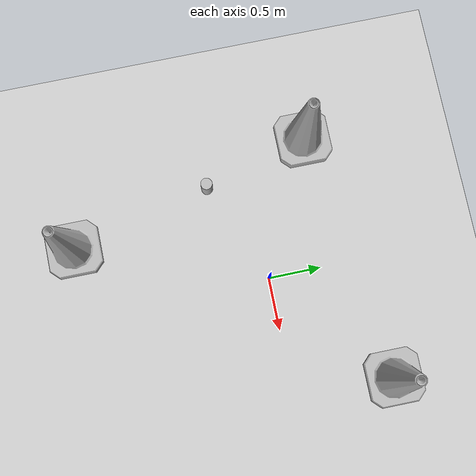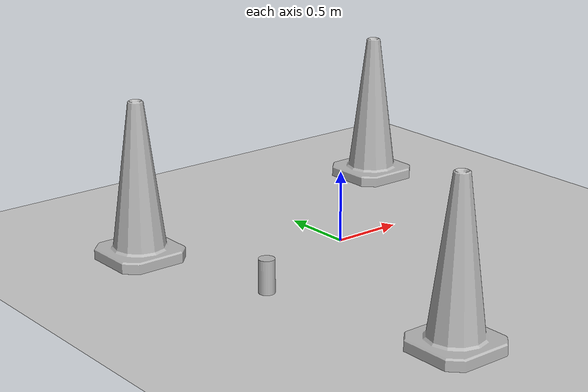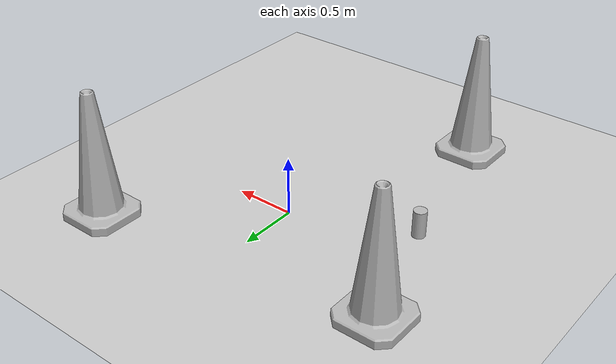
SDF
<sdf version="1.7">
 <world name="default">
  <light name="sun" type="directional">
   <pose>0 0 10 0 -0 0</pose>
   <diffuse>0.8 0.8 0.8 1</diffuse>
   <specular>0.2 0.2 0.2 1</specular>
   <attenuation>
    <range>1000</range>
    <constant>0.9</constant>
    <linear>0.01</linear>
    <quadratic>0.001</quadratic>
   </attenuation>
   <direction>-0.5 0.1 -0.9</direction>
   <spot><inner_angle>0</inner_angle><outer_angle>0</outer_angle><falloff>0</falloff></spot>
  </light>
  <model name="ground_plane">
   <static>1</static>
   <link name="link">
    <collision name="collision">
     <geometry><plane><normal>0 0 1</normal><size>100 100</size></plane></geometry>
     <surface>
      <contact><collide_bitmask>65535</collide_bitmask></contact>
      <friction><ode><mu>100</mu><mu2>50</mu2></ode></friction>
     </surface>
    </collision>
    <visual name="visual">
     <cast_shadows>0</cast_shadows>
     <geometry><plane><normal>0 0 1</normal><size>100 100</size></plane></geometry>
     <material>
      <script><uri>file://media/materials/scripts/gazebo.material</uri><name>Gazebo/Grey</name></script>
     </material>
    </visual>
   </link>
  </model>
  <gravity>0 0 -9.8</gravity>
  <magnetic_field>6e-06 2.3e-05 -4.2e-05</magnetic_field>
  <atmosphere type="adiabatic"/>
  <physics type="ode">
   <max_step_size>0.001</max_step_size>
   <real_time_factor>1</real_time_factor>
   <real_time_update_rate>1000</real_time_update_rate>
  </physics>
  <scene><ambient>0.4 0.4 0.4 1</ambient><background>0.7 0.7 0.7 1</background><shadows>1</shadows></scene>
  <audio><device>default</device></audio>
  <spherical_coordinates>
   <surface_model>EARTH_WGS84</surface_model>
   <latitude_deg>0</latitude_deg>
   <longitude_deg>0</longitude_deg>
   <elevation>0</elevation>
   <heading_deg>0</heading_deg>
  </spherical_coordinates>
  <model name="beer">
   <link name="link">
    <pose>0 0 0.115 0 -0 0</pose>
    <inertial>
     <mass>0.39</mass>
     <inertia><ixx>0.00058</ixx><ixy>0</ixy><ixz>0</ixz><iyy>0.00058</iyy><iyz>0</iyz><izz>0.00019</izz></inertia>
    </inertial>
    <collision name="collision">
     <geometry><cylinder><radius>0.055</radius><length>0.23</length></cylinder></geometry>
    </collision>
    <visual name="visual">
     <geometry><cylinder><radius>0.055</radius><length>0.23</length></cylinder></geometry>
     <material>
      <script>
       <uri>model://beer/materials/scripts</uri>
       <uri>model://beer/materials/textures</uri>
       <name>Beer/Diffuse</name>
      </script>
     </material>
    </visual>
   </link>
   <pose>-0.95805 -0.399208 -7e-06 0 0 -8e-06</pose>
  </model>
  <model name="Construction Cone">
   <link name="link">
    <collision name="collision">
     <geometry>
      <mesh><scale>10 10 10</scale><uri>model://construction_cone/meshes/construction_cone.dae</uri></mesh>
     </geometry>
    </collision>
    <visual name="visual">
     <geometry>
      <mesh><scale>10 10 10</scale><uri>model://construction_cone/meshes/construction_cone.dae</uri></mesh>
     </geometry>
    </visual>
    <inertial>
     <inertia><ixx>1</ixx><ixy>0</ixy><ixz>0</ixz><iyy>1</iyy><iyz>0</iyz><izz>1</izz></inertia>
     <mass>1</mass>
    </inertial>
   </link>
   <pose>-0.631176 -1.74483 -0 0 -1e-06 0</pose>
  </model>
  <model name="Construction Cone_0">
   <link name="link">
    <collision name="collision">
     <geometry>
      <mesh><scale>10 10 10</scale><uri>model://construction_cone/meshes/construction_cone.dae</uri></mesh>
     </geometry>
    </collision>
    <visual name="visual">
     <geometry>
      <mesh><scale>10 10 10</scale><uri>model://construction_cone/meshes/construction_cone.dae</uri></mesh>
     </geometry>
    </visual>
    <inertial>
     <inertia><ixx>1</ixx><ixy>0</ixy><ixz>0</ixz><iyy>1</iyy><iyz>0</iyz><izz>1</izz></inertia>
     <mass>1</mass>
    </inertial>
   </link>
   <pose>-1.25034 0.597964 -0 0 -0 0</pose>
  </model>
  <model name="Construction Cone_1">
   <link name="link">
    <collision name="collision">
     <geometry>
      <mesh><scale>10 10 10</scale><uri>model://construction_cone/meshes/construction_cone.dae</uri></mesh>
     </geometry>
    </collision>
    <visual name="visual">
     <geometry>
      <mesh><scale>10 10 10</scale><uri>model://construction_cone/meshes/construction_cone.dae</uri></mesh>
     </geometry>
    </visual>
    <inertial>
     <inertia><ixx>1</ixx><ixy>0</ixy><ixz>0</ixz><iyy>1</iyy><iyz>0</iyz><izz>1</izz></inertia>
     <mass>1</mass>
    </inertial>
   </link>
   <pose>1.13286 0.940794 -0 0 -0 0</pose>
  </model>
 </world>
</sdf>
